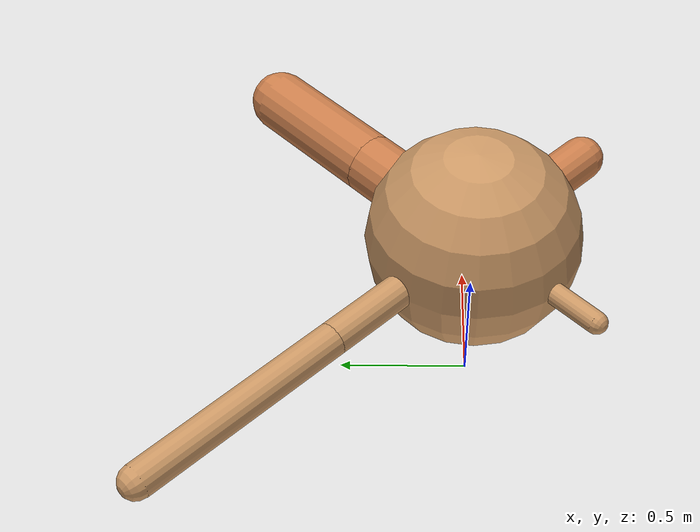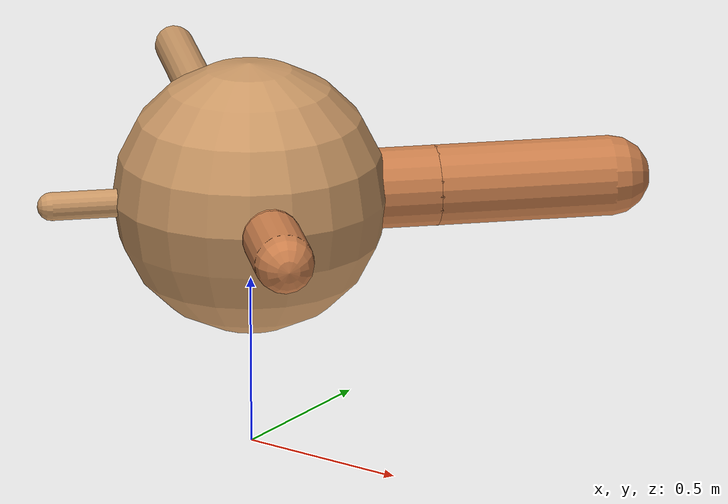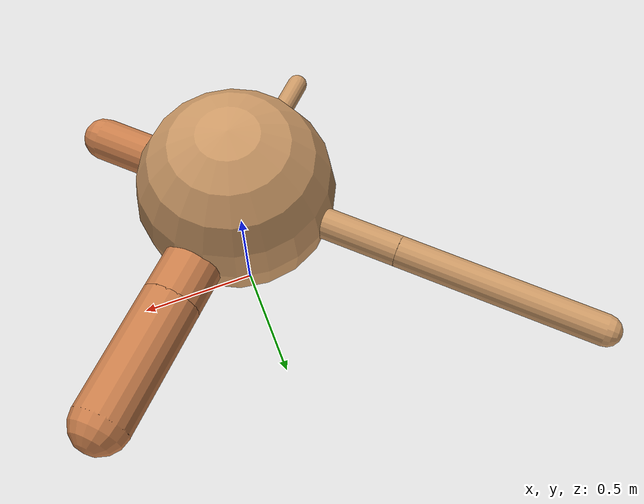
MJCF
<?xml version="1.0" ?>
<mujoco model="ant">

	<compiler angle="degree" coordinate="local" inertiafromgeom="true"/>

	<option integrator="RK4" timestep="0.01"/>

	<custom>

		<numeric data="0.0 0.0 0.55 1.0 0.0 0.0 0.0 0.0 1.0 0.0 -1.0 0.0 -1.0 0.0 1.0" name="init_qpos"/>

	</custom>

	<default>

		<joint armature="1" damping="1" limited="true"/>

		<geom conaffinity="0" condim="3" density="5.0" friction="1.5 0.1 0.1" margin="0.01" rgba="0.8 0.6 0.4 1"/>

	</default>

	<worldbody>

		<body name="torso" pos="0 0 0.75">

			<geom name="torso_geom" pos="0 0 0" size="0.3949468163780241" type="sphere"/>

			<!--joint armature="0" damping="0" limited="false" margin="0.01" name="root" pos="0 0 0" type="free"/-->

			<body name="front_left_leg" pos="0 0 0">

				<geom fromto="0 0 0 0.2 0.2 0" name="aux_1_geom" size="0.11695517632264585" type="capsule" rgba=".8 .5 .3 1"/>

				<body name="aux_1" pos="0.2 0.2 0">

					<joint axis="0 0 1" name="hip_1" pos="0.0 0.0 0.0" range="-40 40" type="hinge"/>

					<geom fromto="0 0 0 0.181432538565754 0.181432538565754 0" name="left_leg_geom" size="0.11695517632264585" type="capsule" rgba=".8 .5 .3 1"/>

					<body pos="0.181432538565754 0.181432538565754 0" name="front_left_foot">

						<joint axis="-1 1 0" name="ankle_1" pos="0.0 0.0 0.0" range="30 100" type="hinge"/>

						<geom fromto="0 0 0 0.362865077131508 0.362865077131508 0" name="left_ankle_geom" size="0.11695517632264585" type="capsule" rgba=".8 .5 .3 1"/>

					</body>

				</body>

			</body>

			<body name="front_right_leg" pos="0 0 0">

				<geom fromto="0 0 0 -0.2 0.2 0" name="aux_2_geom" size="0.06125985070737591" type="capsule"/>

				<body name="aux_2" pos="-0.2 0.2 0">

					<joint axis="0 0 1" name="hip_2" pos="0.0 0.0 0.0" range="-40 40" type="hinge"/>

					<geom fromto="0 0 0 -0.28893999076094995 0.28893999076094995 0" name="right_leg_geom" size="0.06125985070737591" type="capsule"/>

					<body pos="-0.28893999076094995 0.28893999076094995 0" name="front_right_foot">

						<joint axis="1 1 0" name="ankle_2" pos="0.0 0.0 0.0" range="-100 -30" type="hinge"/>

						<geom fromto="0 0 0 -0.5778799815218999 0.5778799815218999 0" name="right_ankle_geom" size="0.06125985070737591" type="capsule"/>

					</body>

				</body>

			</body>

			<body name="left_back_leg" pos="0 0 0">

				<geom fromto="0 0 0 -0.2 -0.2 0" name="aux_3_geom" size="0.040790247547172885" type="capsule"/>

				<body name="aux_3" pos="-0.2 -0.2 0">

					<joint axis="0 0 1" name="hip_3" pos="0.0 0.0 0.0" range="-40 40" type="hinge"/>

					<geom fromto="0 0 0 -0.06810981167517885 -0.06810981167517885 0" name="back_leg_geom" size="0.040790247547172885" type="capsule"/>

					<body pos="-0.06810981167517885 -0.06810981167517885 0" name="left_back_foot">

						<joint axis="-1 1 0" name="ankle_3" pos="0.0 0.0 0.0" range="-100 -30" type="hinge"/>

						<geom fromto="0 0 0 -0.1362196233503577 -0.1362196233503577 0" name="third_ankle_geom" size="0.040790247547172885" type="capsule"/>

					</body>

				</body>

			</body>

			<body name="right_back_leg" pos="0 0 0">

				<geom fromto="0 0 0 0.2 -0.2 0" name="aux_4_geom" size="0.08385690946421423" type="capsule" rgba=".8 .5 .3 1"/>

				<body name="aux_4" pos="0.2 -0.2 0">

					<joint axis="0 0 1" name="hip_4" pos="0.0 0.0 0.0" range="-40 40" type="hinge"/>

					<geom fromto="0 0 0 0.07436769351097852 -0.07436769351097852 0" name="rightback_leg_geom" size="0.08385690946421423" type="capsule" rgba=".8 .5 .3 1"/>

					<body pos="0.07436769351097852 -0.07436769351097852 0" name="right_back_foot">

						<joint axis="1 1 0" name="ankle_4" pos="0.0 0.0 0.0" range="30 100" type="hinge"/>

						<geom fromto="0 0 0 0.14873538702195704 -0.14873538702195704 0" name="fourth_ankle_geom" size="0.08385690946421423" type="capsule" rgba=".8 .5 .3 1"/>

					</body>

				</body>

			</body>

		</body>

	</worldbody>

	<actuator>

		<motor ctrllimited="true" ctrlrange="-1.0 1.0" joint="hip_4" gear="150"/>

		<motor ctrllimited="true" ctrlrange="-1.0 1.0" joint="ankle_4" gear="150"/>

		<motor ctrllimited="true" ctrlrange="-1.0 1.0" joint="hip_1" gear="150"/>

		<motor ctrllimited="true" ctrlrange="-1.0 1.0" joint="ankle_1" gear="150"/>

		<motor ctrllimited="true" ctrlrange="-1.0 1.0" joint="hip_2" gear="150"/>

		<motor ctrllimited="true" ctrlrange="-1.0 1.0" joint="ankle_2" gear="150"/>

		<motor ctrllimited="true" ctrlrange="-1.0 1.0" joint="hip_3" gear="150"/>

		<motor ctrllimited="true" ctrlrange="-1.0 1.0" joint="ankle_3" gear="150"/>

	</actuator>

</mujoco>
